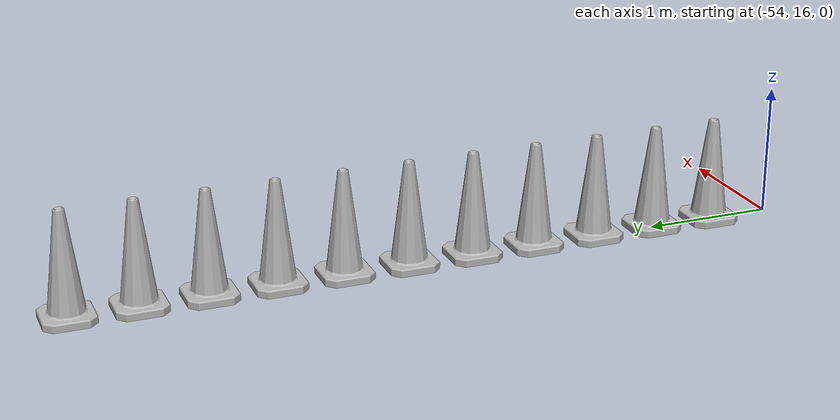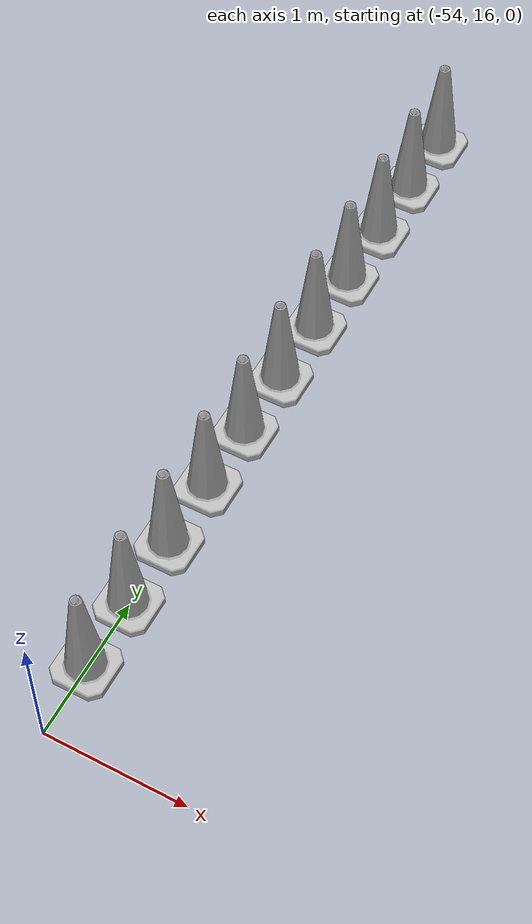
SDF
<sdf version="1.4">
 <world name="default">
  <include><uri>model://sun</uri></include>
  <model name="Construction Cone Parking Lot 22">
   <link name="link">
    <collision name="collision">
     <geometry>
      <mesh><scale>7.5 7.5 7.5</scale><uri>model://construction_cone/meshes/construction_cone.dae</uri></mesh>
     </geometry>
    </collision>
    <visual name="visual">
     <geometry>
      <mesh><scale>7.5 7.5 7.5</scale><uri>model://construction_cone/meshes/construction_cone.dae</uri></mesh>
     </geometry>
    </visual>
    <velocity_decay><linear>0</linear><angular>0</angular></velocity_decay>
    <inertial>
     <inertia><ixx>1</ixx><ixy>0</ixy><ixz>0</ixz><iyy>1</iyy><iyz>0</iyz><izz>1</izz></inertia>
     <mass>1</mass>
    </inertial>
   </link>
   <pose>-54 16.5 0 0 -0 0</pose>
   <static>0</static>
  </model>
  <model name="Construction Cone Parking Lot 23">
   <link name="link">
    <collision name="collision">
     <geometry>
      <mesh><scale>7.5 7.5 7.5</scale><uri>model://construction_cone/meshes/construction_cone.dae</uri></mesh>
     </geometry>
    </collision>
    <visual name="visual">
     <geometry>
      <mesh><scale>7.5 7.5 7.5</scale><uri>model://construction_cone/meshes/construction_cone.dae</uri></mesh>
     </geometry>
    </visual>
    <velocity_decay><linear>0</linear><angular>0</angular></velocity_decay>
    <inertial>
     <inertia><ixx>1</ixx><ixy>0</ixy><ixz>0</ixz><iyy>1</iyy><iyz>0</iyz><izz>1</izz></inertia>
     <mass>1</mass>
    </inertial>
   </link>
   <pose>-54 17 0 0 -0 0</pose>
   <static>0</static>
  </model>
  <model name="Construction Cone Parking Lot 24">
   <link name="link">
    <collision name="collision">
     <geometry>
      <mesh><scale>7.5 7.5 7.5</scale><uri>model://construction_cone/meshes/construction_cone.dae</uri></mesh>
     </geometry>
    </collision>
    <visual name="visual">
     <geometry>
      <mesh><scale>7.5 7.5 7.5</scale><uri>model://construction_cone/meshes/construction_cone.dae</uri></mesh>
     </geometry>
    </visual>
    <velocity_decay><linear>0</linear><angular>0</angular></velocity_decay>
    <inertial>
     <inertia><ixx>1</ixx><ixy>0</ixy><ixz>0</ixz><iyy>1</iyy><iyz>0</iyz><izz>1</izz></inertia>
     <mass>1</mass>
    </inertial>
   </link>
   <pose>-54 17.5 0 0 -0 0</pose>
   <static>0</static>
  </model>
  <model name="Construction Cone Parking Lot 25">
   <link name="link">
    <collision name="collision">
     <geometry>
      <mesh><scale>7.5 7.5 7.5</scale><uri>model://construction_cone/meshes/construction_cone.dae</uri></mesh>
     </geometry>
    </collision>
    <visual name="visual">
     <geometry>
      <mesh><scale>7.5 7.5 7.5</scale><uri>model://construction_cone/meshes/construction_cone.dae</uri></mesh>
     </geometry>
    </visual>
    <velocity_decay><linear>0</linear><angular>0</angular></velocity_decay>
    <inertial>
     <inertia><ixx>1</ixx><ixy>0</ixy><ixz>0</ixz><iyy>1</iyy><iyz>0</iyz><izz>1</izz></inertia>
     <mass>1</mass>
    </inertial>
   </link>
   <pose>-54 18 0 0 -0 0</pose>
   <static>0</static>
  </model>
  <model name="Construction Cone Parking Lot 26">
   <link name="link">
    <collision name="collision">
     <geometry>
      <mesh><scale>7.5 7.5 7.5</scale><uri>model://construction_cone/meshes/construction_cone.dae</uri></mesh>
     </geometry>
    </collision>
    <visual name="visual">
     <geometry>
      <mesh><scale>7.5 7.5 7.5</scale><uri>model://construction_cone/meshes/construction_cone.dae</uri></mesh>
     </geometry>
    </visual>
    <velocity_decay><linear>0</linear><angular>0</angular></velocity_decay>
    <inertial>
     <inertia><ixx>1</ixx><ixy>0</ixy><ixz>0</ixz><iyy>1</iyy><iyz>0</iyz><izz>1</izz></inertia>
     <mass>1</mass>
    </inertial>
   </link>
   <pose>-54 18.5 0 0 -0 0</pose>
   <static>0</static>
  </model>
  <model name="Construction Cone Parking Lot 27">
   <link name="link">
    <collision name="collision">
     <geometry>
      <mesh><scale>7.5 7.5 7.5</scale><uri>model://construction_cone/meshes/construction_cone.dae</uri></mesh>
     </geometry>
    </collision>
    <visual name="visual">
     <geometry>
      <mesh><scale>7.5 7.5 7.5</scale><uri>model://construction_cone/meshes/construction_cone.dae</uri></mesh>
     </geometry>
    </visual>
    <velocity_decay><linear>0</linear><angular>0</angular></velocity_decay>
    <inertial>
     <inertia><ixx>1</ixx><ixy>0</ixy><ixz>0</ixz><iyy>1</iyy><iyz>0</iyz><izz>1</izz></inertia>
     <mass>1</mass>
    </inertial>
   </link>
   <pose>-54 19 0 0 -0 0</pose>
   <static>0</static>
  </model>
  <model name="Construction Cone Parking Lot 28">
   <link name="link">
    <collision name="collision">
     <geometry>
      <mesh><scale>7.5 7.5 7.5</scale><uri>model://construction_cone/meshes/construction_cone.dae</uri></mesh>
     </geometry>
    </collision>
    <visual name="visual">
     <geometry>
      <mesh><scale>7.5 7.5 7.5</scale><uri>model://construction_cone/meshes/construction_cone.dae</uri></mesh>
     </geometry>
    </visual>
    <velocity_decay><linear>0</linear><angular>0</angular></velocity_decay>
    <inertial>
     <inertia><ixx>1</ixx><ixy>0</ixy><ixz>0</ixz><iyy>1</iyy><iyz>0</iyz><izz>1</izz></inertia>
     <mass>1</mass>
    </inertial>
   </link>
   <pose>-54 19.5 0 0 -0 0</pose>
   <static>0</static>
  </model>
  <model name="Construction Cone Parking Lot 29">
   <link name="link">
    <collision name="collision">
     <geometry>
      <mesh><scale>7.5 7.5 7.5</scale><uri>model://construction_cone/meshes/construction_cone.dae</uri></mesh>
     </geometry>
    </collision>
    <visual name="visual">
     <geometry>
      <mesh><scale>7.5 7.5 7.5</scale><uri>model://construction_cone/meshes/construction_cone.dae</uri></mesh>
     </geometry>
    </visual>
    <velocity_decay><linear>0</linear><angular>0</angular></velocity_decay>
    <inertial>
     <inertia><ixx>1</ixx><ixy>0</ixy><ixz>0</ixz><iyy>1</iyy><iyz>0</iyz><izz>1</izz></inertia>
     <mass>1</mass>
    </inertial>
   </link>
   <pose>-54 20 0 0 -0 0</pose>
   <static>0</static>
  </model>
  <model name="Construction Cone Parking Lot 30">
   <link name="link">
    <collision name="collision">
     <geometry>
      <mesh><scale>7.5 7.5 7.5</scale><uri>model://construction_cone/meshes/construction_cone.dae</uri></mesh>
     </geometry>
    </collision>
    <visual name="visual">
     <geometry>
      <mesh><scale>7.5 7.5 7.5</scale><uri>model://construction_cone/meshes/construction_cone.dae</uri></mesh>
     </geometry>
    </visual>
    <velocity_decay><linear>0</linear><angular>0</angular></velocity_decay>
    <inertial>
     <inertia><ixx>1</ixx><ixy>0</ixy><ixz>0</ixz><iyy>1</iyy><iyz>0</iyz><izz>1</izz></inertia>
     <mass>1</mass>
    </inertial>
   </link>
   <pose>-54 20.5 0 0 -0 0</pose>
   <static>0</static>
  </model>
  <model name="Construction Cone Parking Lot 31">
   <link name="link">
    <collision name="collision">
     <geometry>
      <mesh><scale>7.5 7.5 7.5</scale><uri>model://construction_cone/meshes/construction_cone.dae</uri></mesh>
     </geometry>
    </collision>
    <visual name="visual">
     <geometry>
      <mesh><scale>7.5 7.5 7.5</scale><uri>model://construction_cone/meshes/construction_cone.dae</uri></mesh>
     </geometry>
    </visual>
    <velocity_decay><linear>0</linear><angular>0</angular></velocity_decay>
    <inertial>
     <inertia><ixx>1</ixx><ixy>0</ixy><ixz>0</ixz><iyy>1</iyy><iyz>0</iyz><izz>1</izz></inertia>
     <mass>1</mass>
    </inertial>
   </link>
   <pose>-54 21 0 0 -0 0</pose>
   <static>0</static>
  </model>
  <model name="Construction Cone Parking Lot 32">
   <link name="link">
    <collision name="collision">
     <geometry>
      <mesh><scale>7.5 7.5 7.5</scale><uri>model://construction_cone/meshes/construction_cone.dae</uri></mesh>
     </geometry>
    </collision>
    <visual name="visual">
     <geometry>
      <mesh><scale>7.5 7.5 7.5</scale><uri>model://construction_cone/meshes/construction_cone.dae</uri></mesh>
     </geometry>
    </visual>
    <velocity_decay><linear>0</linear><angular>0</angular></velocity_decay>
    <inertial>
     <inertia><ixx>1</ixx><ixy>0</ixy><ixz>0</ixz><iyy>1</iyy><iyz>0</iyz><izz>1</izz></inertia>
     <mass>1</mass>
    </inertial>
   </link>
   <pose>-54 21.5 0 0 -0 0</pose>
   <static>0</static>
  </model>
 </world>
</sdf>
